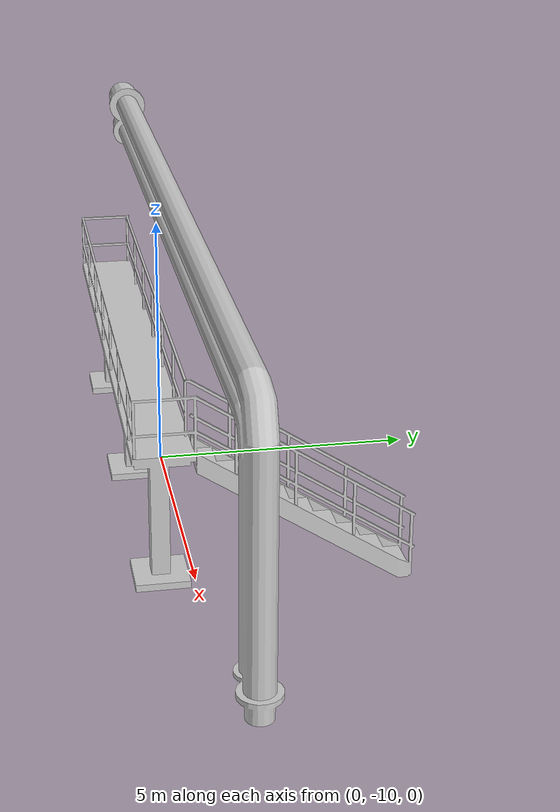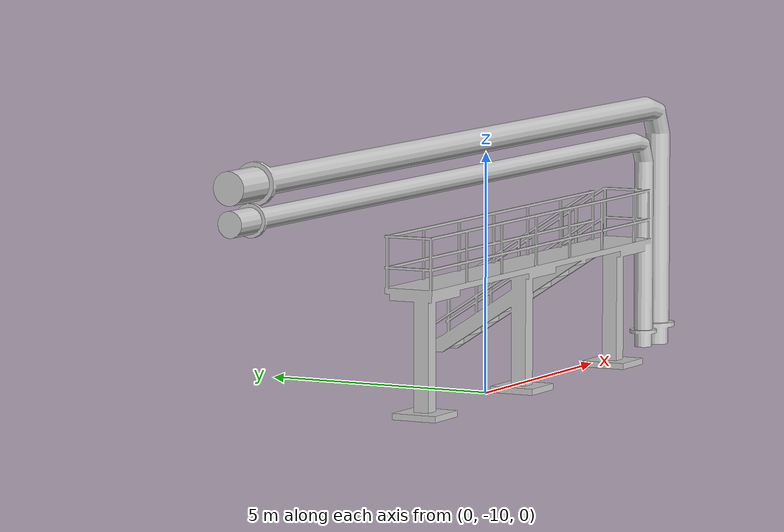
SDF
<?xml version='1.0'?>
<sdf version='1.6'>
  <model name='Surroundings_2020'>
    <static>true</static>
    <link name="link">
      <pose>0 0 0 0 0 0</pose>
      <visual name="visual">
            <geometry>
                <mesh>
                  <scale>1 1 1</scale>
                  <uri>model://surroundings_2020/meshes/surroundings_2020.dae</uri>
                </mesh>
            </geometry>
        </visual>
    </link>
  </model>
</sdf>
